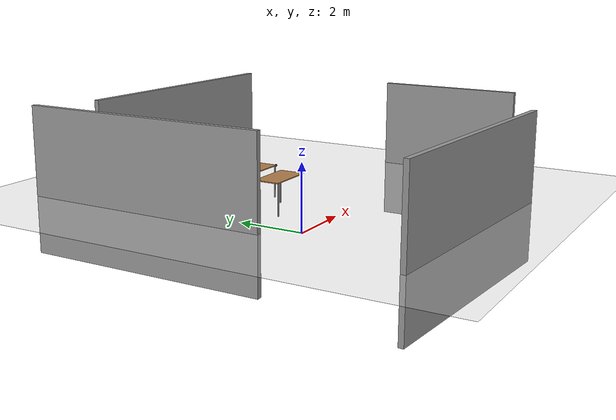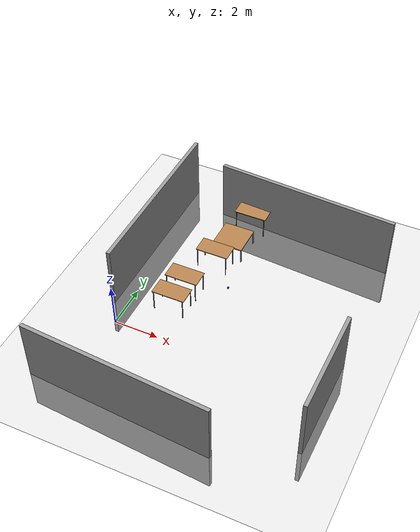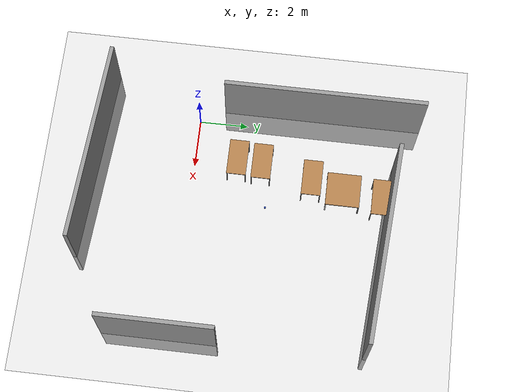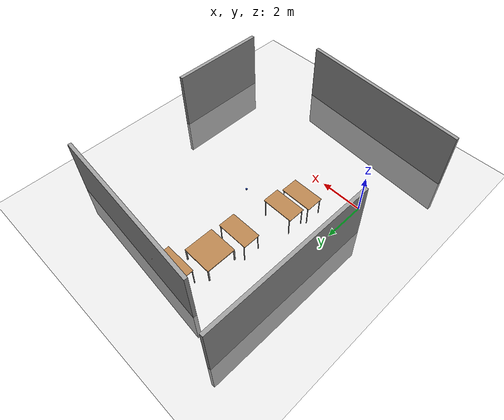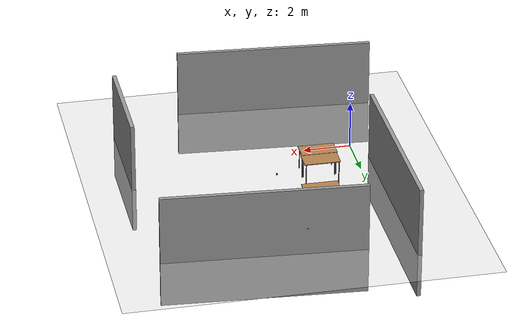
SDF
<sdf version="1.6">
 <world name="default">
  <model name="ground_plane">
   <static>1</static>
   <link name="link">
    <collision name="collision">
     <geometry><plane><normal>0 0 1</normal><size>100 100</size></plane></geometry>
     <surface>
      <contact><collide_bitmask>65535</collide_bitmask></contact>
      <friction><ode><mu>100</mu><mu2>50</mu2></ode></friction>
     </surface>
    </collision>
    <visual name="visual">
     <cast_shadows>0</cast_shadows>
     <geometry><plane><normal>0 0 1</normal><size>100 100</size></plane></geometry>
     <material>
      <script><uri>file://media/materials/scripts/gazebo.material</uri><name>Gazebo/Grey</name></script>
     </material>
    </visual>
   </link>
  </model>
  <light name="sun" type="directional">
   <pose>0 0 10 0 -0 0</pose>
   <diffuse>0.8 0.8 0.8 1</diffuse>
   <specular>0.2 0.2 0.2 1</specular>
   <attenuation>
    <range>1000</range>
    <constant>0.9</constant>
    <linear>0.01</linear>
    <quadratic>0.001</quadratic>
   </attenuation>
   <direction>-0.5 0.1 -0.9</direction>
   <spot><inner_angle>0</inner_angle><outer_angle>0</outer_angle><falloff>0</falloff></spot>
  </light>
  <model name="demo_cube">
   <static>0</static>
   <link name="link">
    <inertial>
     <mass>0.25</mass>
     <inertia><ixx>0.001</ixx><ixy>0</ixy><ixz>0</ixz><iyy>0.001</iyy><iyz>0</iyz><izz>0.001</izz></inertia>
    </inertial>
    <collision name="collision">
     <geometry><box><size>0.06 0.06 0.06</size></box></geometry>
     <surface>
      <friction><ode><mu>30</mu><mu2>30</mu2></ode></friction>
      <contact><ode><kp>1e+06</kp><kd>100</kd><max_vel>1</max_vel><min_depth>0.002</min_depth></ode></contact>
     </surface>
    </collision>
    <visual name="visual">
     <geometry><box><size>0.06 0.06 0.06</size></box></geometry>
     <material>
      <script><uri>file://media/materials/scripts/gazebo.material</uri><name>Gazebo/Blue</name></script>
     </material>
    </visual>
    <velocity_decay><linear>0</linear><angular>0</angular></velocity_decay>
   </link>
   <pose>3.8 3.15 0.802999 0 -0 0</pose>
  </model>
  <gravity>0 0 -9.8</gravity>
  <magnetic_field>6e-06 2.3e-05 -4.2e-05</magnetic_field>
  <atmosphere type="adiabatic"/>
  <physics type="ode">
   <max_step_size>0.001</max_step_size>
   <real_time_factor>1</real_time_factor>
   <real_time_update_rate>1000</real_time_update_rate>
  </physics>
  <scene><ambient>0.4 0.4 0.4 1</ambient><background>0.7 0.7 0.7 1</background><shadows>1</shadows></scene>
  <spherical_coordinates>
   <surface_model>EARTH_WGS84</surface_model>
   <latitude_deg>0</latitude_deg>
   <longitude_deg>0</longitude_deg>
   <elevation>0</elevation>
   <heading_deg>0</heading_deg>
  </spherical_coordinates>
  <model name="wall">
   <link name="link">
    <inertial>
     <mass>6.58749</mass>
     <inertia><ixx>49.9075</ixx><ixy>0</ixy><ixz>0</ixz><iyy>12.5752</iyy><iyz>0</iyz><izz>37.3629</izz></inertia>
    </inertial>
    <visual name="visual">
     <geometry><box><size>0.166974 4.65432 4.78326</size></box></geometry>
     <material>
      <script><name>Gazebo/Grey</name><uri>file://media/materials/scripts/gazebo.material</uri></script>
      <shader type="pixel"/>
     </material>
    </visual>
    <collision name="collision">
     <geometry><box><size>0.166974 4.65432 4.78326</size></box></geometry>
     <surface>
      <friction>
       <ode><mu>1</mu><mu2>1</mu2><fdir1>0 0 0</fdir1><slip1>0</slip1><slip2>0</slip2></ode>
       <torsional>
        <coefficient>1</coefficient>
        <patch_radius>0</patch_radius>
        <surface_radius>0</surface_radius>
        <use_patch_radius>1</use_patch_radius>
        <ode><slip>0</slip></ode>
       </torsional>
      </friction>
      <bounce><restitution_coefficient>0</restitution_coefficient><threshold>1e+06</threshold></bounce>
      <contact>
       <collide_without_contact>0</collide_without_contact>
       <collide_without_contact_bitmask>1</collide_without_contact_bitmask>
       <collide_bitmask>1</collide_bitmask>
       <ode>
        <soft_cfm>0</soft_cfm>
        <soft_erp>0.2</soft_erp>
        <kp>1e+13</kp>
        <kd>1</kd>
        <max_vel>0.01</max_vel>
        <min_depth>0</min_depth>
       </ode>
       <bullet>
        <split_impulse>1</split_impulse>
        <split_impulse_penetration_threshold>-0.01</split_impulse_penetration_threshold>
        <soft_cfm>0</soft_cfm>
        <soft_erp>0.2</soft_erp>
        <kp>1e+13</kp>
        <kd>1</kd>
       </bullet>
      </contact>
     </surface>
    </collision>
   </link>
   <static>0</static>
   <pose>9.47828 -0.475904 0.5 0 -0 0</pose>
  </model>
  <model name="table">
   <static>1</static>
   <link name="link">
    <collision name="surface">
     <pose>0 0 1 0 -0 0</pose>
     <geometry><box><size>1.5 0.8 0.03</size></box></geometry>
     <surface><friction><ode><mu>0.6</mu><mu2>0.6</mu2></ode></friction></surface>
    </collision>
    <visual name="visual1">
     <pose>0 0 1 0 -0 0</pose>
     <geometry><box><size>1.5 0.8 0.03</size></box></geometry>
     <material>
      <script><uri>file://media/materials/scripts/gazebo.material</uri><name>Gazebo/Wood</name></script>
     </material>
    </visual>
    <collision name="front_left_leg">
     <pose>0.68 0.38 0.5 0 -0 0</pose>
     <geometry><cylinder><radius>0.02</radius><length>1</length></cylinder></geometry>
    </collision>
    <visual name="front_left_leg">
     <pose>0.68 0.38 0.5 0 -0 0</pose>
     <geometry><cylinder><radius>0.02</radius><length>1</length></cylinder></geometry>
     <material>
      <script><uri>file://media/materials/scripts/gazebo.material</uri><name>Gazebo/Grey</name></script>
     </material>
    </visual>
    <collision name="front_right_leg">
     <pose>0.68 -0.38 0.5 0 -0 0</pose>
     <geometry><cylinder><radius>0.02</radius><length>1</length></cylinder></geometry>
    </collision>
    <visual name="front_right_leg">
     <pose>0.68 -0.38 0.5 0 -0 0</pose>
     <geometry><cylinder><radius>0.02</radius><length>1</length></cylinder></geometry>
     <material>
      <script><uri>file://media/materials/scripts/gazebo.material</uri><name>Gazebo/Grey</name></script>
     </material>
    </visual>
    <collision name="back_right_leg">
     <pose>-0.68 -0.38 0.5 0 -0 0</pose>
     <geometry><cylinder><radius>0.02</radius><length>1</length></cylinder></geometry>
    </collision>
    <visual name="back_right_leg">
     <pose>-0.68 -0.38 0.5 0 -0 0</pose>
     <geometry><cylinder><radius>0.02</radius><length>1</length></cylinder></geometry>
     <material>
      <script><uri>file://media/materials/scripts/gazebo.material</uri><name>Gazebo/Grey</name></script>
     </material>
    </visual>
    <collision name="back_left_leg">
     <pose>-0.68 0.38 0.5 0 -0 0</pose>
     <geometry><cylinder><radius>0.02</radius><length>1</length></cylinder></geometry>
    </collision>
    <visual name="back_left_leg">
     <pose>-0.68 0.38 0.5 0 -0 0</pose>
     <geometry><cylinder><radius>0.02</radius><length>1</length></cylinder></geometry>
     <material>
      <script><uri>file://media/materials/scripts/gazebo.material</uri><name>Gazebo/Grey</name></script>
     </material>
    </visual>
   </link>
   <pose>2.34558 4.93728 0 0 -0 0</pose>
  </model>
  <model name="table_clone">
   <static>1</static>
   <link name="link">
    <collision name="surface">
     <pose>0 0 1 0 -0 0</pose>
     <geometry><box><size>1.5 0.8 0.03</size></box></geometry>
     <surface><friction><ode><mu>0.6</mu><mu2>0.6</mu2></ode></friction></surface>
    </collision>
    <visual name="visual1">
     <pose>0 0 1 0 -0 0</pose>
     <geometry><box><size>1.5 0.8 0.03</size></box></geometry>
     <material>
      <script><uri>file://media/materials/scripts/gazebo.material</uri><name>Gazebo/Wood</name></script>
     </material>
    </visual>
    <collision name="front_left_leg">
     <pose>0.68 0.38 0.5 0 -0 0</pose>
     <geometry><cylinder><radius>0.02</radius><length>1</length></cylinder></geometry>
    </collision>
    <visual name="front_left_leg">
     <pose>0.68 0.38 0.5 0 -0 0</pose>
     <geometry><cylinder><radius>0.02</radius><length>1</length></cylinder></geometry>
     <material>
      <script><uri>file://media/materials/scripts/gazebo.material</uri><name>Gazebo/Grey</name></script>
     </material>
    </visual>
    <collision name="front_right_leg">
     <pose>0.68 -0.38 0.5 0 -0 0</pose>
     <geometry><cylinder><radius>0.02</radius><length>1</length></cylinder></geometry>
    </collision>
    <visual name="front_right_leg">
     <pose>0.68 -0.38 0.5 0 -0 0</pose>
     <geometry><cylinder><radius>0.02</radius><length>1</length></cylinder></geometry>
     <material>
      <script><uri>file://media/materials/scripts/gazebo.material</uri><name>Gazebo/Grey</name></script>
     </material>
    </visual>
    <collision name="back_right_leg">
     <pose>-0.68 -0.38 0.5 0 -0 0</pose>
     <geometry><cylinder><radius>0.02</radius><length>1</length></cylinder></geometry>
    </collision>
    <visual name="back_right_leg">
     <pose>-0.68 -0.38 0.5 0 -0 0</pose>
     <geometry><cylinder><radius>0.02</radius><length>1</length></cylinder></geometry>
     <material>
      <script><uri>file://media/materials/scripts/gazebo.material</uri><name>Gazebo/Grey</name></script>
     </material>
    </visual>
    <collision name="back_left_leg">
     <pose>-0.68 0.38 0.5 0 -0 0</pose>
     <geometry><cylinder><radius>0.02</radius><length>1</length></cylinder></geometry>
    </collision>
    <visual name="back_left_leg">
     <pose>-0.68 0.38 0.5 0 -0 0</pose>
     <geometry><cylinder><radius>0.02</radius><length>1</length></cylinder></geometry>
     <material>
      <script><uri>file://media/materials/scripts/gazebo.material</uri><name>Gazebo/Grey</name></script>
     </material>
    </visual>
   </link>
   <pose>1.90396 2.82218 0.11605 0 -0 0</pose>
  </model>
  <model name="table_clone_1">
   <static>1</static>
   <link name="link">
    <collision name="surface">
     <pose>0 0 1 0 -0 0</pose>
     <geometry><box><size>1.5 0.8 0.03</size></box></geometry>
     <surface><friction><ode><mu>0.6</mu><mu2>0.6</mu2></ode></friction></surface>
    </collision>
    <visual name="visual1">
     <pose>0 0 1 0 -0 0</pose>
     <geometry><box><size>1.5 0.8 0.03</size></box></geometry>
     <material>
      <script><uri>file://media/materials/scripts/gazebo.material</uri><name>Gazebo/Wood</name></script>
     </material>
    </visual>
    <collision name="front_left_leg">
     <pose>0.68 0.38 0.5 0 -0 0</pose>
     <geometry><cylinder><radius>0.02</radius><length>1</length></cylinder></geometry>
    </collision>
    <visual name="front_left_leg">
     <pose>0.68 0.38 0.5 0 -0 0</pose>
     <geometry><cylinder><radius>0.02</radius><length>1</length></cylinder></geometry>
     <material>
      <script><uri>file://media/materials/scripts/gazebo.material</uri><name>Gazebo/Grey</name></script>
     </material>
    </visual>
    <collision name="front_right_leg">
     <pose>0.68 -0.38 0.5 0 -0 0</pose>
     <geometry><cylinder><radius>0.02</radius><length>1</length></cylinder></geometry>
    </collision>
    <visual name="front_right_leg">
     <pose>0.68 -0.38 0.5 0 -0 0</pose>
     <geometry><cylinder><radius>0.02</radius><length>1</length></cylinder></geometry>
     <material>
      <script><uri>file://media/materials/scripts/gazebo.material</uri><name>Gazebo/Grey</name></script>
     </material>
    </visual>
    <collision name="back_right_leg">
     <pose>-0.68 -0.38 0.5 0 -0 0</pose>
     <geometry><cylinder><radius>0.02</radius><length>1</length></cylinder></geometry>
    </collision>
    <visual name="back_right_leg">
     <pose>-0.68 -0.38 0.5 0 -0 0</pose>
     <geometry><cylinder><radius>0.02</radius><length>1</length></cylinder></geometry>
     <material>
      <script><uri>file://media/materials/scripts/gazebo.material</uri><name>Gazebo/Grey</name></script>
     </material>
    </visual>
    <collision name="back_left_leg">
     <pose>-0.68 0.38 0.5 0 -0 0</pose>
     <geometry><cylinder><radius>0.02</radius><length>1</length></cylinder></geometry>
    </collision>
    <visual name="back_left_leg">
     <pose>-0.68 0.38 0.5 0 -0 0</pose>
     <geometry><cylinder><radius>0.02</radius><length>1</length></cylinder></geometry>
     <material>
      <script><uri>file://media/materials/scripts/gazebo.material</uri><name>Gazebo/Grey</name></script>
     </material>
    </visual>
   </link>
   <pose>2.9218 7.83526 0.11605 0 -0 0</pose>
  </model>
  <model name="table_0">
   <static>1</static>
   <link name="link">
    <collision name="surface">
     <pose>0 0 1 0 -0 0</pose>
     <geometry><box><size>1.5 0.8 0.03</size></box></geometry>
     <surface><friction><ode><mu>0.6</mu><mu2>0.6</mu2></ode></friction></surface>
    </collision>
    <visual name="visual1">
     <pose>0 0 1 0 -0 0</pose>
     <geometry><box><size>1.5 0.8 0.03</size></box></geometry>
     <material>
      <script><uri>file://media/materials/scripts/gazebo.material</uri><name>Gazebo/Wood</name></script>
     </material>
    </visual>
    <collision name="front_left_leg">
     <pose>0.68 0.38 0.5 0 -0 0</pose>
     <geometry><cylinder><radius>0.02</radius><length>1</length></cylinder></geometry>
    </collision>
    <visual name="front_left_leg">
     <pose>0.68 0.38 0.5 0 -0 0</pose>
     <geometry><cylinder><radius>0.02</radius><length>1</length></cylinder></geometry>
     <material>
      <script><uri>file://media/materials/scripts/gazebo.material</uri><name>Gazebo/Grey</name></script>
     </material>
    </visual>
    <collision name="front_right_leg">
     <pose>0.68 -0.38 0.5 0 -0 0</pose>
     <geometry><cylinder><radius>0.02</radius><length>1</length></cylinder></geometry>
    </collision>
    <visual name="front_right_leg">
     <pose>0.68 -0.38 0.5 0 -0 0</pose>
     <geometry><cylinder><radius>0.02</radius><length>1</length></cylinder></geometry>
     <material>
      <script><uri>file://media/materials/scripts/gazebo.material</uri><name>Gazebo/Grey</name></script>
     </material>
    </visual>
    <collision name="back_right_leg">
     <pose>-0.68 -0.38 0.5 0 -0 0</pose>
     <geometry><cylinder><radius>0.02</radius><length>1</length></cylinder></geometry>
    </collision>
    <visual name="back_right_leg">
     <pose>-0.68 -0.38 0.5 0 -0 0</pose>
     <geometry><cylinder><radius>0.02</radius><length>1</length></cylinder></geometry>
     <material>
      <script><uri>file://media/materials/scripts/gazebo.material</uri><name>Gazebo/Grey</name></script>
     </material>
    </visual>
    <collision name="back_left_leg">
     <pose>-0.68 0.38 0.5 0 -0 0</pose>
     <geometry><cylinder><radius>0.02</radius><length>1</length></cylinder></geometry>
    </collision>
    <visual name="back_left_leg">
     <pose>-0.68 0.38 0.5 0 -0 0</pose>
     <geometry><cylinder><radius>0.02</radius><length>1</length></cylinder></geometry>
     <material>
      <script><uri>file://media/materials/scripts/gazebo.material</uri><name>Gazebo/Grey</name></script>
     </material>
    </visual>
   </link>
   <pose>1.80184 1.80509 0 0 -0 0</pose>
  </model>
  <model name="table_55x55in">
   <static>1</static>
   <link name="table_top">
    <pose>0 0 0.707 0 -0 0</pose>
    <visual name="top_visual">
     <geometry><box><size>1.397 1.397 0.05</size></box></geometry>
     <material>
      <script><name>Gazebo/Wood</name><uri>file://media/materials/scripts/gazebo.material</uri></script>
     </material>
    </visual>
    <collision name="top_collision"><geometry><box><size>1.397 1.397 0.05</size></box></geometry></collision>
   </link>
   <link name="leg1">
    <pose>0.6735 0.6735 0.341 0 -0 0</pose>
    <visual name="leg1_visual">
     <geometry><box><size>0.05 0.05 0.682</size></box></geometry>
     <material>
      <script><name>Gazebo/Black</name><uri>file://media/materials/scripts/gazebo.material</uri></script>
     </material>
    </visual>
    <collision name="leg1_collision"><geometry><box><size>0.05 0.05 0.682</size></box></geometry></collision>
   </link>
   <link name="leg2">
    <pose>-0.6735 0.6735 0.341 0 -0 0</pose>
    <visual name="leg2_visual"><geometry><box><size>0.05 0.05 0.682</size></box></geometry></visual>
    <collision name="leg2_collision"><geometry><box><size>0.05 0.05 0.682</size></box></geometry></collision>
   </link>
   <link name="leg3">
    <pose>0.6735 -0.6735 0.341 0 -0 0</pose>
    <visual name="leg3_visual"><geometry><box><size>0.05 0.05 0.682</size></box></geometry></visual>
    <collision name="leg3_collision"><geometry><box><size>0.05 0.05 0.682</size></box></geometry></collision>
   </link>
   <link name="leg4">
    <pose>-0.6735 -0.6735 0.341 0 -0 0</pose>
    <visual name="leg4_visual"><geometry><box><size>0.05 0.05 0.682</size></box></geometry></visual>
    <collision name="leg4_collision"><geometry><box><size>0.05 0.05 0.682</size></box></geometry></collision>
   </link>
   <pose>2.63516 6.26593 0 0 -0 0</pose>
  </model>
  <model name="wall_clone">
   <link name="link">
    <inertial>
     <mass>6.58749</mass>
     <inertia><ixx>49.9075</ixx><ixy>0</ixy><ixz>0</ixz><iyy>12.5752</iyy><iyz>0</iyz><izz>37.3629</izz></inertia>
    </inertial>
    <visual name="visual">
     <geometry><box><size>0.166974 8.24826 4.78326</size></box></geometry>
     <material>
      <script><name>Gazebo/Grey</name><uri>file://media/materials/scripts/gazebo.material</uri></script>
      <shader type="pixel"/>
     </material>
    </visual>
    <collision name="collision">
     <geometry><box><size>0.166974 8.24826 4.78326</size></box></geometry>
     <surface>
      <friction>
       <ode><mu>1</mu><mu2>1</mu2><fdir1>0 0 0</fdir1><slip1>0</slip1><slip2>0</slip2></ode>
       <torsional>
        <coefficient>1</coefficient>
        <patch_radius>0</patch_radius>
        <surface_radius>0</surface_radius>
        <use_patch_radius>1</use_patch_radius>
        <ode><slip>0</slip></ode>
       </torsional>
      </friction>
      <bounce><restitution_coefficient>0</restitution_coefficient><threshold>1e+06</threshold></bounce>
      <contact>
       <collide_without_contact>0</collide_without_contact>
       <collide_without_contact_bitmask>1</collide_without_contact_bitmask>
       <collide_bitmask>1</collide_bitmask>
       <ode>
        <soft_cfm>0</soft_cfm>
        <soft_erp>0.2</soft_erp>
        <kp>1e+13</kp>
        <kd>1</kd>
        <max_vel>0.01</max_vel>
        <min_depth>0</min_depth>
       </ode>
       <bullet>
        <split_impulse>1</split_impulse>
        <split_impulse_penetration_threshold>-0.01</split_impulse_penetration_threshold>
        <soft_cfm>0</soft_cfm>
        <soft_erp>0.2</soft_erp>
        <kp>1e+13</kp>
        <kd>1</kd>
       </bullet>
      </contact>
     </surface>
    </collision>
   </link>
   <static>0</static>
   <pose>5.31842 8.03232 0.466267 0 0 -1.64074</pose>
  </model>
  <model name="wall_clone_1">
   <link name="link">
    <inertial>
     <mass>6.58749</mass>
     <inertia><ixx>49.9075</ixx><ixy>0</ixy><ixz>0</ixz><iyy>12.5752</iyy><iyz>0</iyz><izz>37.3629</izz></inertia>
    </inertial>
    <visual name="visual">
     <geometry><box><size>0.166974 8.24826 4.78326</size></box></geometry>
     <material>
      <script><name>Gazebo/Grey</name><uri>file://media/materials/scripts/gazebo.material</uri></script>
      <shader type="pixel"/>
     </material>
    </visual>
    <collision name="collision">
     <geometry><box><size>0.166974 8.24826 4.78326</size></box></geometry>
     <surface>
      <friction>
       <ode><mu>1</mu><mu2>1</mu2><fdir1>0 0 0</fdir1><slip1>0</slip1><slip2>0</slip2></ode>
       <torsional>
        <coefficient>1</coefficient>
        <patch_radius>0</patch_radius>
        <surface_radius>0</surface_radius>
        <use_patch_radius>1</use_patch_radius>
        <ode><slip>0</slip></ode>
       </torsional>
      </friction>
      <bounce><restitution_coefficient>0</restitution_coefficient><threshold>1e+06</threshold></bounce>
      <contact>
       <collide_without_contact>0</collide_without_contact>
       <collide_without_contact_bitmask>1</collide_without_contact_bitmask>
       <collide_bitmask>1</collide_bitmask>
       <ode>
        <soft_cfm>0</soft_cfm>
        <soft_erp>0.2</soft_erp>
        <kp>1e+13</kp>
        <kd>1</kd>
        <max_vel>0.01</max_vel>
        <min_depth>0</min_depth>
       </ode>
       <bullet>
        <split_impulse>1</split_impulse>
        <split_impulse_penetration_threshold>-0.01</split_impulse_penetration_threshold>
        <soft_cfm>0</soft_cfm>
        <soft_erp>0.2</soft_erp>
        <kp>1e+13</kp>
        <kd>1</kd>
       </bullet>
      </contact>
     </surface>
    </collision>
   </link>
   <static>0</static>
   <pose>-0.640653 5.11048 0.5 0 -0 0</pose>
  </model>
  <model name="wall_clone_clone">
   <link name="link">
    <inertial>
     <mass>6.58749</mass>
     <inertia><ixx>49.9075</ixx><ixy>0</ixy><ixz>0</ixz><iyy>12.5752</iyy><iyz>0</iyz><izz>37.3629</izz></inertia>
    </inertial>
    <visual name="visual">
     <geometry><box><size>0.166974 8.24826 4.78326</size></box></geometry>
     <material>
      <script><name>Gazebo/Grey</name><uri>file://media/materials/scripts/gazebo.material</uri></script>
      <shader type="pixel"/>
     </material>
    </visual>
    <collision name="collision">
     <geometry><box><size>0.166974 8.24826 4.78326</size></box></geometry>
     <surface>
      <friction>
       <ode><mu>1</mu><mu2>1</mu2><fdir1>0 0 0</fdir1><slip1>0</slip1><slip2>0</slip2></ode>
       <torsional>
        <coefficient>1</coefficient>
        <patch_radius>0</patch_radius>
        <surface_radius>0</surface_radius>
        <use_patch_radius>1</use_patch_radius>
        <ode><slip>0</slip></ode>
       </torsional>
      </friction>
      <bounce><restitution_coefficient>0</restitution_coefficient><threshold>1e+06</threshold></bounce>
      <contact>
       <collide_without_contact>0</collide_without_contact>
       <collide_without_contact_bitmask>1</collide_without_contact_bitmask>
       <collide_bitmask>1</collide_bitmask>
       <ode>
        <soft_cfm>0</soft_cfm>
        <soft_erp>0.2</soft_erp>
        <kp>1e+13</kp>
        <kd>1</kd>
        <max_vel>0.01</max_vel>
        <min_depth>0</min_depth>
       </ode>
       <bullet>
        <split_impulse>1</split_impulse>
        <split_impulse_penetration_threshold>-0.01</split_impulse_penetration_threshold>
        <soft_cfm>0</soft_cfm>
        <soft_erp>0.2</soft_erp>
        <kp>1e+13</kp>
        <kd>1</kd>
       </bullet>
      </contact>
     </surface>
    </collision>
   </link>
   <static>0</static>
   <pose>2.41873 -4.06751 0.466267 0 0 -1.64074</pose>
  </model>
 </world>
</sdf>
